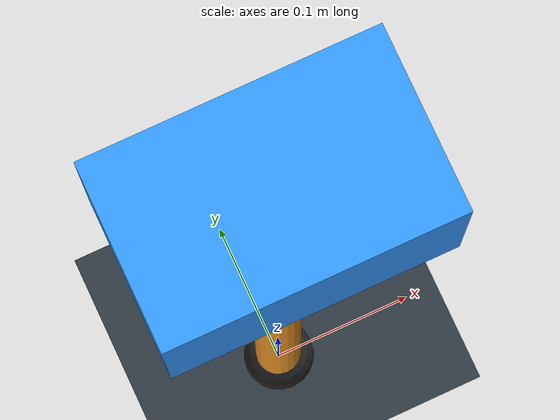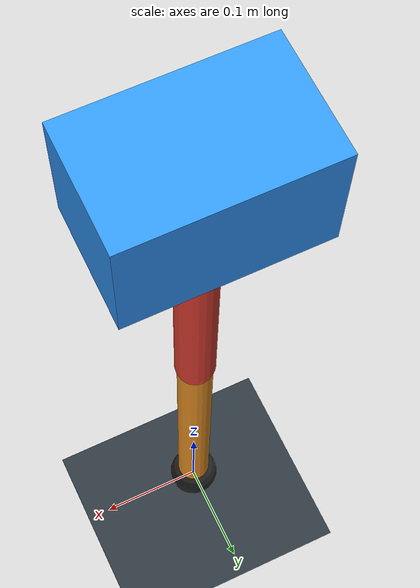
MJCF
<mujoco model="single_axis_two_bar">
  <compiler angle="radian" inertiafromgeom="true"/>
  <option timestep="0.001" integrator="implicitfast" gravity="0 0 -9.81"/>
  <default>
    <joint damping="0.08"/>
    <geom friction="1.2 0.01 0.0001" condim="3"/>
  </default>
  <worldbody>
    <geom name="floor" type="plane" size="5 5 0.1" rgba="0.18 0.22 0.25 1"/>
    <body name="carriage" pos="0 0 0.5980866274992649">
      <joint name="pole_slide" type="slide" axis="0 0 1"/>
      <geom name="payload" type="box" size="0.08 0.05 0.05" mass="2.4576892995777797" rgba="0.2 0.6 1 1"/>
      <body name="thigh" pos="0 0 0">
        <joint name="hip" type="hinge" axis="0 1 0"/>
        <geom name="thigh_link" type="capsule" fromto="0 0 0 0 0 -0.29570712658915765" size="0.018" mass="0.210695235119707" rgba="0.9 0.25 0.2 1"/>
        <body name="shank" pos="0 0 -0.29570712658915765">
          <joint name="knee" type="hinge" axis="0 1 0"/>
          <geom name="shank_link" type="capsule" fromto="0 0 0 0 0 -0.2951038295956515" size="0.016" mass="0.21026537803996745" rgba="0.95 0.6 0.15 1"/>
          <geom name="foot" type="sphere" pos="0 0 -0.2951038295956515" size="0.025" mass="0.03" rgba="0.15 0.15 0.15 1"/>
          <site name="toe" pos="0 0 -0.2951038295956515" size="0.008"/>
        </body>
      </body>
    </body>
  </worldbody>
  <actuator>
    <motor name="hip_motor" joint="hip" ctrlrange="-15.154818510361384 15.154818510361384"/>
    <motor name="knee_motor" joint="knee" ctrlrange="-66.12629850856038 66.12629850856038"/>
  </actuator>
</mujoco>
